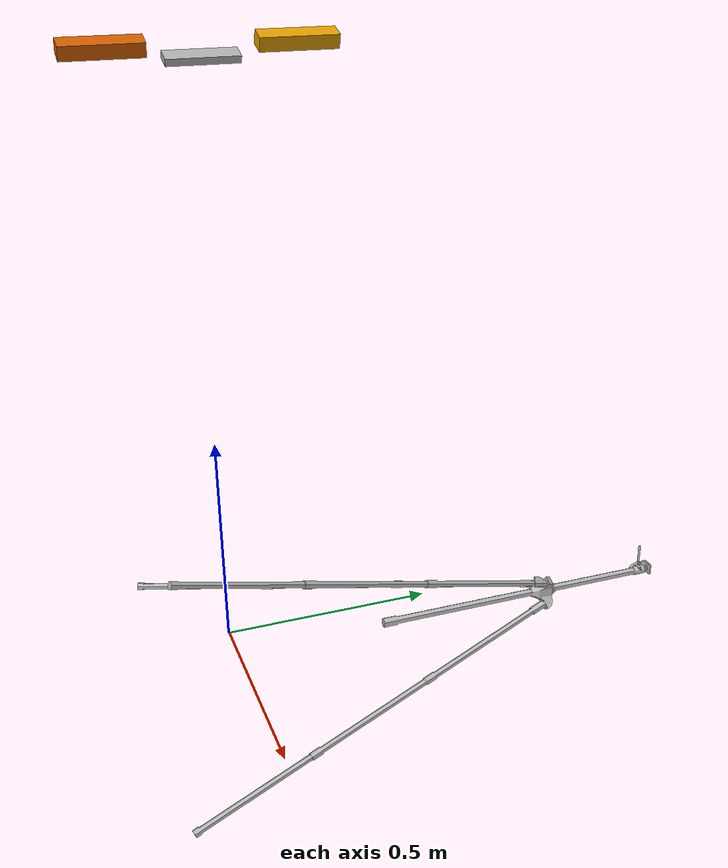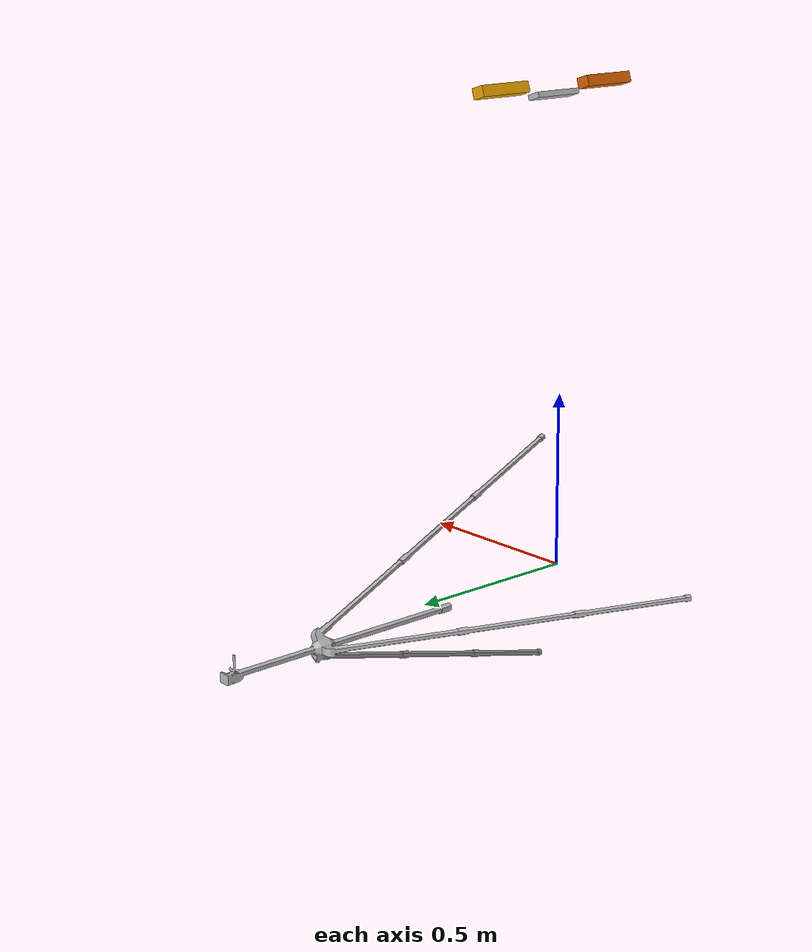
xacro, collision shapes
<?xml version="1.0"?>
<robot name="robot" xmlns:xacro="http://ros.org/wiki/xacro">

    <!-- ase_2rgb is a simple robotic system containing two rgb cameras on top of a tripop.  -->
    <xacro:property name="M_PI" value="3.1415926535897931" />
    <material name="Orange">
        <color rgba="1.0 0.4 0.0 1.0"/>
    </material>

    <!-- testing adding a sensor camera -->
    <xacro:include filename="$(find ase_2rgb_description)/urdf/rgbd_camera.urdf.xacro" />

    <!-- Left Camera -->
    <xacro:rgbd_camera parent="tripod_left_support" prefix="rgb_left" color="red">
        <origin xyz="0 0.075 0.015" rpy="0 0 0"/>
    </xacro:rgbd_camera>

    <!-- Right Camera -->
    <xacro:rgbd_camera parent="tripod_right_support" prefix="rgb_right" color="green">
        <origin xyz="0 0.05 0.015" rpy="0 0 0"/>
    </xacro:rgbd_camera>

    <material name="grey">
        <color rgba="0.7 0.7 0.7 1.0" />
    </material>

    <!-- Define links and joints -->
    <link name="world" />

    <!-- Tripod link-->
    <link name="tripod">
        <visual>
            <origin xyz="0 0 0" rpy="0 0 0" />
            <geometry>
                <mesh filename="package://ase_2rgb_description/meshes/tripod/tripod.dae" scale="0.04 0.04 0.04" />
            </geometry>
            <material name="grey"/>
        </visual>
        <collision name="tripod_collision">
            <origin xyz="0 0 0" rpy="0 0 0" />
            <geometry>
                <mesh filename="package://ase_2rgb_description/meshes/tripod/tripod.dae" scale="0.04 0.04 0.04" />
            </geometry>
        </collision>
        <inertial>
            <mass value="1.0" />
            <origin xyz="0 0 0" rpy="0 0 0" />
            <inertia ixx="1" ixy="0" ixz="0" iyy="1" iyz="0" izz="1" />
        </inertial>
    </link>

      <!-- parent to tripod -->
    <joint name="world_to_tripod" type="fixed">
        <parent link="world" />
        <child link="tripod" />
        <origin xyz="0 0 0" rpy="0 0 0" />
    </joint>

       <link name="tripod_plate">
        <visual>
            <origin xyz="0 0 0" rpy="0 0 0" />
            <geometry>
                <box size="0.04 0.4 0.015" />
            </geometry>
            <material name="grey" />
        </visual>
        <collision name="tripod_collision">
            <origin xyz="0 0 0" rpy="0 0 0" />
            <geometry>
                <box size="0.04 0.15 0.015" />
            </geometry>
        </collision>
        <inertial>
            <mass value="1.0" />
            <origin xyz="0 0 0" rpy="0 0 0" />
            <inertia ixx="1" ixy="0" ixz="0" iyy="1" iyz="0" izz="1" />
        </inertial>
    </link>

       <!-- tripod to tripod plate-->
    <joint name="tripod_to_tripod_plate" type="fixed">
        <parent link="tripod" />
        <child link="tripod_plate" />
        <origin xyz=".01 .03 1.33" rpy="0 0.314 0" />
    </joint>

    <!-- Tripod left support-->
    <link name="tripod_left_support" />

    <!-- tripod plate to tripod left support -->
    <joint name="tripod_plate_to_tripod_left_support" type="fixed">
        <parent link="tripod_plate" />
        <child link="tripod_left_support" />
        <origin xyz="0 0.18 0.0075" rpy="0 0 0" />
    </joint>

    <!-- Tripod right support-->
    <link name="tripod_right_support" />

    <!-- tripod plate to tripod right support -->
    <joint name="tripod_plate_to_tripod_right_support" type="fixed">
        <parent link="tripod_plate" />
        <child link="tripod_right_support" />
        <origin xyz="0 -0.18 0.0075" rpy="0 0 0" />
    </joint>

</robot>

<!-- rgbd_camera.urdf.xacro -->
<robot name="rgbd_camera" xmlns:xacro="http://ros.org/wiki/xacro">

  <!-- Xacro properties -->
  <xacro:property name="astra_cam_py" value="-0.0125"/>
  <xacro:property name="astra_depth_rel_rgb_py" value="0.0250" />
  <xacro:property name="astra_cam_rel_rgb_py"   value="-0.0125" />
  <xacro:property name="astra_dae_display_scale"   value="0.1" />
  <!-- Parameterised in part by the values in turtlebot_properties.urdf.xacro -->
  <xacro:macro name="rgbd_camera" params="parent prefix *origin color:='black'">

    <joint name="${prefix}_joint" type="fixed">
      <xacro:insert_block name="origin" />
      <parent link="${parent}"/>
      <child link="${prefix}_link"/>
    </joint>

    <link name="${prefix}_link">
      <visual>
        <origin xyz="-0.03 -0.06 0" rpy="${pi} 0 ${pi/2}"/>
        <geometry>

        <xacro:if value="${color == 'red'}">
          <mesh filename="package://ase_2rgb_description/meshes/rgbd_camera/rgbd_camera_red.dae" scale="1 1 1"/>
        </xacro:if>

        <xacro:if value="${color == 'green'}">
          <mesh filename="package://ase_2rgb_description/meshes/rgbd_camera/rgbd_camera_green.dae" scale="1 1 1"/>
        </xacro:if>

        <xacro:if value="${color == 'black'}">
          <mesh filename="package://ase_2rgb_description/meshes/rgbd_camera/rgbd_camera.dae" scale="1 1 1"/>
        </xacro:if>

        <xacro:if value="${color != 'red' and color != 'green' and color != 'black'}">
          <mesh filename="package://ase_2rgb_description/meshes/rgbd_camera/rgbd_camera.dae" scale="1 1 1"/>
        </xacro:if>

        </geometry>
      </visual>
      <material>Gazebo/Red</material>
      <collision>
        <origin xyz="-0.01 -0.06 0" rpy="0 0 0"/>
        <geometry>
        <box size="0.0400 0.1650 0.0300"/>
      </geometry>
      </collision>
      <inertial>
        <mass value="0.00564" />
        <origin xyz="0 0 0" />
        <inertia ixx="0.003881243" ixy="0.0" ixz="0.0"
                 iyy="0.000498940" iyz="0.0"
                 izz="0.003879257" />
      </inertial>
    </link>
    <gazebo reference="${prefix}_link">
      <selfCollide>false</selfCollide>
    </gazebo>

    <joint name="${prefix}_rgb_joint" type="fixed">
      <origin xyz="0 -0.045 0" rpy="0 0 0" />
      <parent link="${prefix}_link"/>
      <child link="${prefix}_rgb_frame" />
    </joint>
    <link name="${prefix}_rgb_frame"/>

    <joint name="${prefix}_rgb_optical_joint" type="fixed">
      <origin xyz="0 0 0" rpy="${-pi/2} 0 ${-pi/2}" />
      <parent link="${prefix}_rgb_frame" />
      <child link="${prefix}_rgb_optical_frame" />
    </joint>
    <link name="${prefix}_rgb_optical_frame"/>

    <joint name="${prefix}_depth_joint" type="fixed">
        <origin xyz="0 -0.02 0" rpy="0 0 0" />
        <parent link="${prefix}_link" />
        <child link="${prefix}_depth_frame" />
    </joint>
    <link name="${prefix}_depth_frame"/>

    <joint name="${prefix}_depth_optical_joint" type="fixed">
        <origin xyz="0 0 0" rpy="${-pi/2} 0 ${-pi/2}" />
        <parent link="${prefix}_depth_frame" />
        <child link="${prefix}_depth_optical_frame" />
    </joint>
    <link name="${prefix}_depth_optical_frame"/>

    <!-- DEPTH Camera sensor-->

      <!-- RGB Camera sensor-->
      <gazebo reference="${prefix}_rgb_frame">
          <sensor type="camera" name="camera">
              <update_rate>10.0</update_rate>
              <camera>
                  <horizontal_fov>${60.0*pi/180.0}</horizontal_fov>
                  <image>
                      <format>B8G8R8</format>
                      <width>1200</width>
                      <height>800</height>
                  </image>
                  <clip>
                      <near>0.10</near>
                      <far>8.0</far>
                  </clip>
              </camera>
              <plugin name="${prefix}_rgb_camera_controller" filename="libgazebo_ros_camera.so">
                  <cameraName>${prefix}</cameraName>
                  <alwaysOn>true</alwaysOn>
                  <updateRate>0</updateRate>
                  <imageTopicName>rgb/image_raw</imageTopicName>
                  <cameraInfoTopicName>rgb/camera_info</cameraInfoTopicName>
                  <frameName>${prefix}_rgb_optical_frame</frameName>
                  <!-- Apparently this is not used-->
                  <baseline>0.0</baseline>
                  <distortion_k1>0.0</distortion_k1>
                  <distortion_k2>0.0</distortion_k2>
                  <distortion_k3>0.0</distortion_k3>
                  <distortion_t1>0.0</distortion_t1>
                  <distortion_t2>0.0</distortion_t2>
              </plugin>
          </sensor>
      </gazebo>

  </xacro:macro>
</robot>
